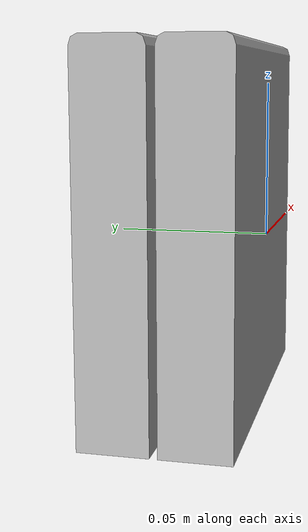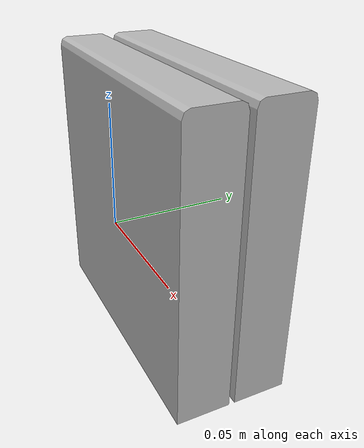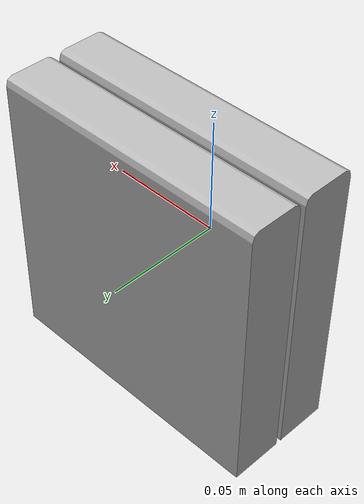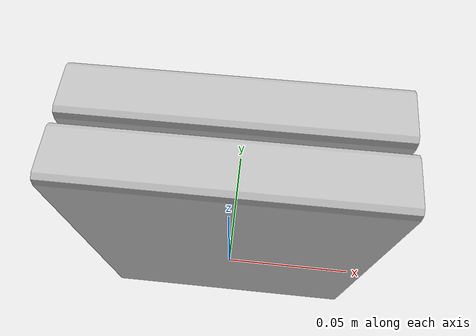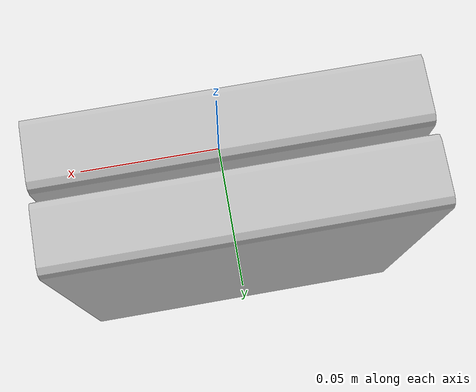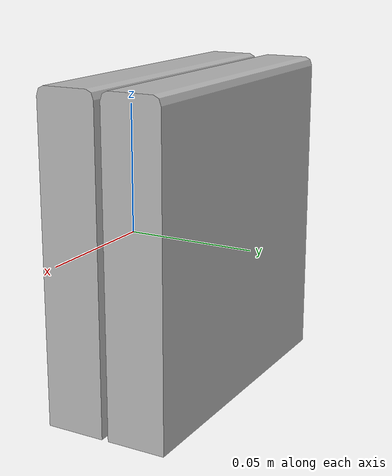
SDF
<?xml version="1.0" ?>
<sdf version="1.4">
  <model name="shelf3_book3_h2">
    <link name="body">
      <pose>0 0 0 0 0 0</pose>
      <inertial>
        <pose>  -0.001500   0.023500   0.002954 0 0 0</pose>
        <mass>0.5</mass>
        <inertia>
          <ixx>0.01</ixx>
          <ixy>0</ixy>
          <ixz>0</ixz>
          <iyy>0.01</iyy>
          <iyz>0</iyz>
          <izz>0.01</izz>
        </inertia>
      </inertial>
      <collision name="collision">
        <geometry>
          <mesh>
            <uri>model://bookshelf/shelf3_items/book3_h2/book3_h2.dae</uri>
          </mesh>
        </geometry>
      </collision>
      <visual name="visual">
        <geometry>
          <mesh>
            <uri>model://bookshelf/shelf3_items/book3_h2/book3_h2.dae</uri>
          </mesh>
        </geometry>
      </visual>
    </link>
  </model>
</sdf>
